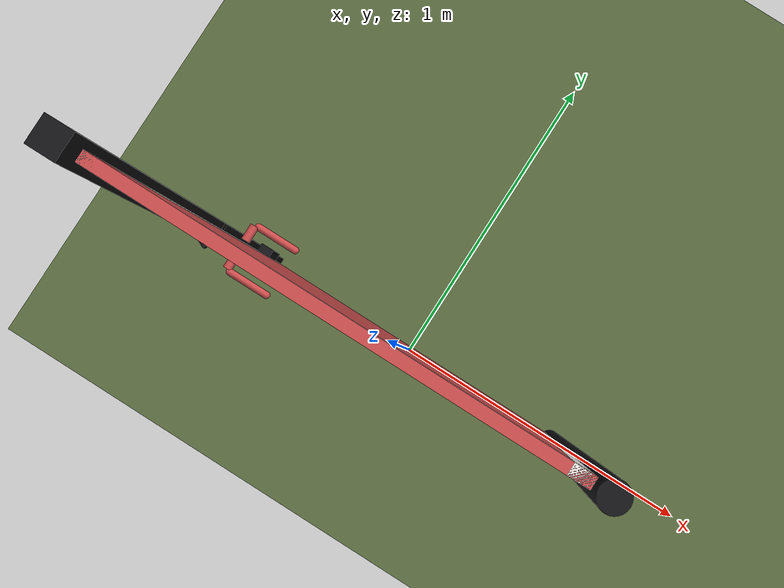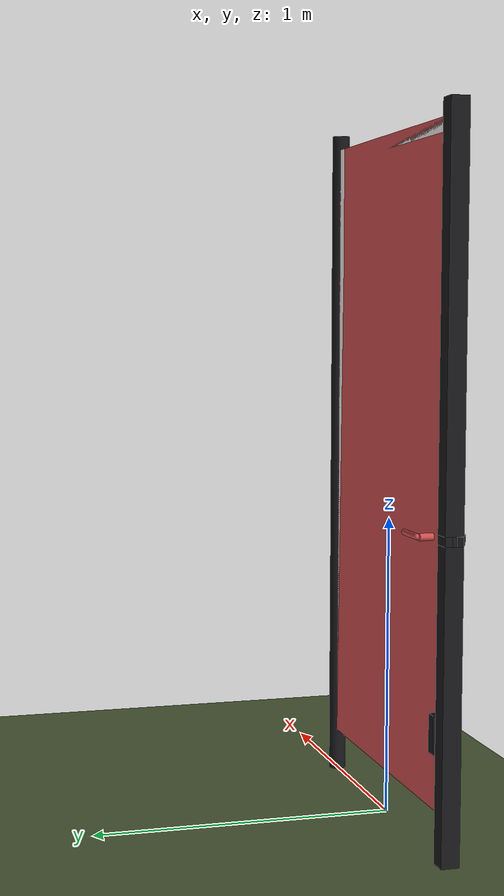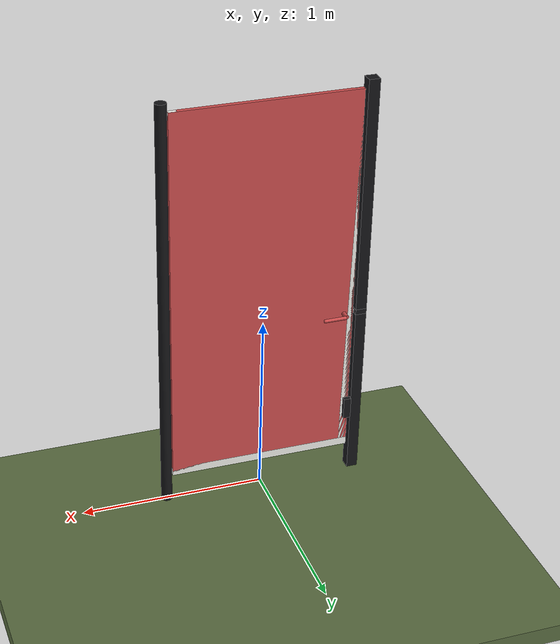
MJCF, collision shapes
<?xml version="1.0" ?>
<mujoco model="db0335_gate_swing_minimal">
  <compiler angle="radian" meshdir="../../hardware" texturedir="../../textures" autolimits="true" inertiafromgeom="false"/>
  <option timestep="0.002" integrator="implicitfast" cone="elliptic" impratio="10" noslip_iterations="3">
    <flag multiccd="enable"/>
  </option>
  <size memory="16M"/>
  <default>
    <geom condim="4" solref="0.005 1" solimp="0.95 0.99 0.001"/>
    <joint solreflimit="0.005 1" solimplimit="0.95 0.99 0.001"/>
    <tendon solreflimit="0.005 1"/>
    <equality solref="0.002 1"/>
  </default>
  <visual>
    <headlight ambient="0.4 0.4 0.4" diffuse="0.7 0.7 0.7" specular="0.2 0.2 0.2"/>
    <quality shadowsize="4096"/>
    <map znear="0.01" zfar="60"/>
  </visual>
  <asset>
    <mesh name="lever_f913fc5b7b" file="lever_f913fc5b7b.obj"/>
    <material name="mat_floor" rgba="0.35 0.42 0.25 1" specular="0.2" shininess="0.15" reflectance="0"/>
    <material name="mat_wall" rgba="0.78 0.76 0.7 1" specular="0.2" shininess="0.1" reflectance="0"/>
    <material name="mat_leaf" rgba="0.93 0.93 0.91 1" specular="0.23" shininess="0.45" reflectance="0.02"/>
    <material name="mat_hinge" rgba="0.65 0.66 0.68 1" specular="0.74" shininess="0.5" reflectance="0.36"/>
    <material name="mat_op_stainless" rgba="0.75 0.76 0.77 1" specular="0.8" shininess="0.65" reflectance="0.4"/>
    <material name="mat_trim" rgba="0.85 0.66 0.3 1" specular="0.8" shininess="0.75" reflectance="0.4"/>
    <material name="mat_bolt" rgba="0.75 0.76 0.77 1" specular="0.8" shininess="0.65" reflectance="0.4"/>
    <material name="mat_frame" rgba="0.08 0.08 0.09 1" specular="0.56" shininess="0.25" reflectance="0.24"/>
    <texture name="skybox" type="skybox" builtin="gradient" rgb1="0.6 0.7 0.85" rgb2="0.9 0.92 0.95" width="256" height="256"/>
  </asset>
  <worldbody>
    <light name="sun" pos="1.5 -2.5 4" dir="-0.3 0.5 -0.8" directional="true" diffuse="0.8 0.8 0.8" specular="0.3 0.3 0.3" castshadow="true"/>
    <light name="fill" pos="-1.5 2.5 3" dir="0.3 -0.5 -0.7" directional="true" diffuse="0.35 0.35 0.4" castshadow="false"/>
    <camera name="robot_view" pos="0 -2.6125 1.7915" xyaxes="1 0 0 0 0.26963 0.962964" fovy="52"/>
    <camera name="far_view" pos="0 2.6125 1.7915" xyaxes="-1 0 0 0 -0.26963 0.962964" fovy="52"/>
    <camera name="iso" pos="-1.9855 -2.1945 2.2095" xyaxes="0.741536 -0.670913 0 0.242917 0.268487 0.932151" fovy="46"/>
    <camera name="detail_handle" pos="-0.158 -0.8675 1.28" xyaxes="0.97561 0.219512 0 -0.070934 0.315262 0.94635" fovy="38"/>
    <geom name="floor" type="box" size="6 6 0.05" pos="0 0 -0.05" material="mat_floor" group="0" contype="1" conaffinity="1" friction="0.8 0.005 0.0001" density="2400"/>
    <geom name="post_hinge" type="cylinder" size="0.03 1.15" pos="0.536 0 1.15" material="mat_frame" group="0" contype="1" conaffinity="1" friction="0.6 0.005 0.0001" density="800"/>
    <geom name="post_1000_wall_n" type="box" size="0.03 0.01175 0.015" pos="-0.536 0.01825 1" material="mat_frame" group="0" contype="1" conaffinity="1" friction="0.6 0.005 0.0001" density="800"/>
    <geom name="post_1000_wall_p" type="box" size="0.03 0.008 0.015" pos="-0.536 -0.0145 1" material="mat_frame" group="0" contype="1" conaffinity="1" friction="0.6 0.005 0.0001" density="800"/>
    <geom name="post_1000_ramp" type="box" size="0.03 0.016771 0.015" pos="-0.540333 -0.024084 1" quat="0.973249 0 0 -0.229753" material="mat_frame" group="0" contype="1" conaffinity="1" friction="0.12 0.005 0.0001" density="800"/>
    <geom name="post_1000_back" type="box" size="0.021 0.0065 0.015" pos="-0.545 0 1" material="mat_frame" group="0" contype="1" conaffinity="1" friction="0.6 0.005 0.0001" density="800"/>
    <geom name="post_latch_0" type="box" size="0.03 0.03 0.4925" pos="-0.536 0 0.4925" material="mat_frame" group="0" contype="1" conaffinity="1" friction="0.6 0.005 0.0001" density="800"/>
    <geom name="post_latch_1" type="box" size="0.03 0.03 0.6425" pos="-0.536 0 1.6575" material="mat_frame" group="0" contype="1" conaffinity="1" friction="0.6 0.005 0.0001" density="800"/>
    <geom name="gate_stop" type="box" size="0.02 0.012 0.06" pos="-0.486 0.0245 0.4" material="mat_frame" group="0" contype="1" conaffinity="1" friction="0.6 0.005 0.0001" density="800"/>
    <site name="approach_point" pos="0 -1.5 0" quat="1 0 0 0" size="0.05" rgba="0.2 0.9 0.2 0.5" group="4"/>
    <site name="goal_point" pos="0 1.5 0" quat="1 0 0 0" size="0.05" rgba="0.2 0.9 0.2 0.5" group="4"/>
    <site name="door_plane_center" pos="0 0 1.06" quat="1 0 0 0" size="0.02" rgba="0.2 0.9 0.2 0.5" group="4"/>
    <body name="leaf" pos="0.506 0 0">
      <inertial pos="-0.503 0 1.2" mass="63.327062" quat="0.5 0.5 0.5 -0.5" diaginertia="5.28128783 23.277655743 28.552347004"/>
      <joint name="leaf_hinge" type="hinge" axis="0 0 1" pos="-0.003 -0.05 0" limited="true" range="0 1.745329" damping="8.37926" frictionloss="5.851184" stiffness="5" springref="-1.521308" armature="0.02"/>
      <geom name="leaf_slab_col" type="box" size="0.5 0.0125 1.05" pos="-0.503 0 1.2" material="mat_leaf" group="3" contype="1" conaffinity="1" rgba="0.8 0.3 0.3 0.25" friction="0.45 0.005 0.0001" density="1"/>
      <geom name="leaf_rail_b" type="box" size="0.5 0.0125 0.0225" pos="-0.503 0 0.1725" material="mat_leaf" group="1" contype="0" conaffinity="0" density="1"/>
      <geom name="leaf_rail_t" type="box" size="0.5 0.0125 0.0225" pos="-0.503 0 2.2275" material="mat_leaf" group="1" contype="0" conaffinity="0" density="1"/>
      <geom name="leaf_stile_h" type="box" size="0.0225 0.0125 1.05" pos="-0.0255 0 1.2" material="mat_leaf" group="1" contype="0" conaffinity="0" density="1"/>
      <geom name="leaf_stile_l" type="box" size="0.0225 0.0125 1.05" pos="-0.9805 0 1.2" material="mat_leaf" group="1" contype="0" conaffinity="0" density="1"/>
      <site name="leaf_edge_mid" pos="-1.003 0 1.05" quat="1 0 0 0" size="0.02" rgba="0.2 0.9 0.2 0.5" group="4"/>
      <body name="leaf_handle" pos="-0.948 0 1">
        <inertial pos="0.0423 0 0" mass="0.712286" quat="0.707107 0 0 -0.707107" diaginertia="0.001444644 0.002597697 0.004003972"/>
        <joint name="leaf_handle_hinge" type="hinge" axis="0 1 0" limited="true" range="0 0.65" damping="0.225565" frictionloss="0.051863" stiffness="1" springref="-0.503022" armature="0.01"/>
        <geom name="leaf_handle_lever_n" type="mesh" mesh="lever_f913fc5b7b" pos="0 -0.0125 0" quat="0 0 -0.707107 0.707107" material="mat_op_stainless" group="1" contype="0" conaffinity="0" density="3000"/>
        <geom name="leaf_handle_lever_col_n" type="capsule" size="0.0095 0.0555" pos="0.065 -0.0675 0" quat="0.707107 0 0.707107 0" material="mat_op_stainless" group="3" contype="1" conaffinity="1" rgba="0.8 0.3 0.3 0.25" friction="0.7 0.01 0.0001" density="3000"/>
        <geom name="leaf_handle_hub_col_n" type="cylinder" size="0.012 0.022" pos="0 -0.0425 0" quat="0.707107 -0.707107 0 0" material="mat_op_stainless" group="3" contype="1" conaffinity="1" rgba="0.8 0.3 0.3 0.25" friction="0.6 0.005 0.0001" density="3000"/>
        <geom name="leaf_handle_lever_p" type="mesh" mesh="lever_f913fc5b7b" pos="0 0.0125 0" quat="0 0 0.707107 0.707107" material="mat_op_stainless" group="1" contype="0" conaffinity="0" density="3000"/>
        <geom name="leaf_handle_lever_col_p" type="capsule" size="0.0095 0.0555" pos="0.065 0.0675 0" quat="0.707107 0 0.707107 0" material="mat_op_stainless" group="3" contype="1" conaffinity="1" rgba="0.8 0.3 0.3 0.25" friction="0.7 0.01 0.0001" density="3000"/>
        <geom name="leaf_handle_hub_col_p" type="cylinder" size="0.012 0.022" pos="0 0.0425 0" quat="0.707107 -0.707107 0 0" material="mat_op_stainless" group="3" contype="1" conaffinity="1" rgba="0.8 0.3 0.3 0.25" friction="0.6 0.005 0.0001" density="3000"/>
        <site name="leaf_handle_grip_n" pos="0.104 -0.0675 0" quat="1 0 0 0" size="0.012" rgba="0.2 0.9 0.2 0.5" group="4"/>
        <site name="leaf_handle_grip_p" pos="0.104 0.0675 0" quat="1 0 0 0" size="0.012" rgba="0.2 0.9 0.2 0.5" group="4"/>
      </body>
      <body name="leaf_latch_bolt" pos="-1.003 0 1">
        <inertial pos="0.008 0 0" mass="0.027149" quat="0 0 -0.707107 0.707107" diaginertia="0.000000328 0.000003943 0.000003943"/>
        <joint name="leaf_latch_bolt_slide" type="slide" axis="1 0 0" limited="true" range="0 0.014" damping="2" frictionloss="0.3" stiffness="400" springref="-0.01" armature="0.1"/>
        <geom name="leaf_latch_bolt_capsule" type="capsule" size="0.005 0.017" pos="0.008 0 0" quat="0.707107 0 -0.707107 0" material="mat_bolt" group="0" contype="1" conaffinity="1" friction="0.2 0.005 0.0001" density="8500"/>
      </body>
    </body>
  </worldbody>
  <tendon>
    <fixed name="leaf_latch_bolt_coupling" limited="true" range="0 10">
      <joint joint="leaf_latch_bolt_slide" coef="1"/>
      <joint joint="leaf_handle_hinge" coef="-0.022951"/>
    </fixed>
  </tendon>
  <sensor>
    <jointpos name="leaf_hinge_pos" joint="leaf_hinge"/>
    <jointvel name="leaf_hinge_vel" joint="leaf_hinge"/>
    <jointpos name="leaf_handle_hinge_pos" joint="leaf_handle_hinge"/>
    <jointvel name="leaf_handle_hinge_vel" joint="leaf_handle_hinge"/>
    <jointpos name="leaf_latch_bolt_slide_pos" joint="leaf_latch_bolt_slide"/>
    <jointvel name="leaf_latch_bolt_slide_vel" joint="leaf_latch_bolt_slide"/>
  </sensor>
</mujoco>
